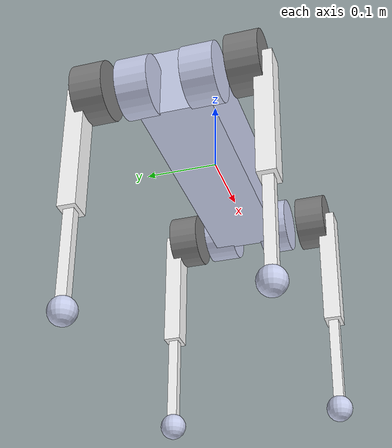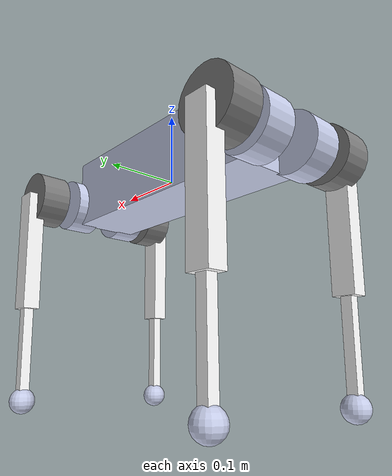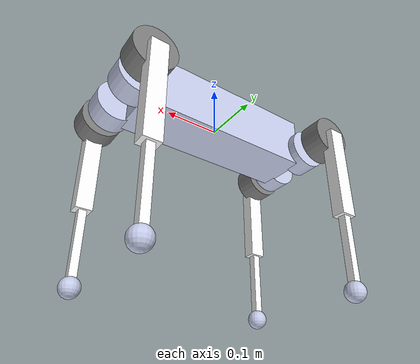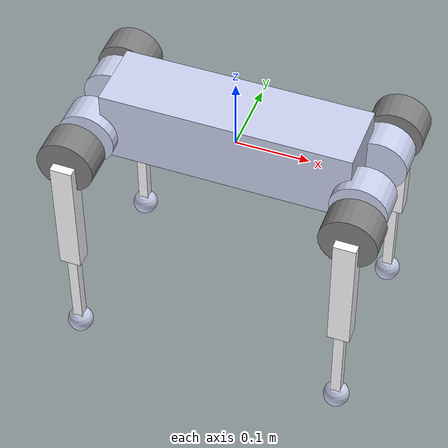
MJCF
<mujoco model="fanfan">
  <compiler angle="radian"/>

  <worldbody>
    <geom size="0.17 0.0475 0.05" pos="0 0 0.017" type="box" rgba="0.792157 0.819608 0.933333 1"/>
    <geom size="0.002 0.002 0.001" type="box" rgba="0.792157 0.819608 0.933333 1"/>
    <body name="FR_hip" pos="0.19 -0.0451 0.00075">
      <inertial pos="-0.00439891 0.00308568 0" quat="0.500068 0.500068 0.499932 0.499932" mass="0.402185" diaginertia="0.000305797 0.000212343 0.000212341"/>
      <joint name="FR_hip_joint" pos="0 0 0" axis="1 0 0" range="-0.8 0.8" actuatorfrcrange="-17 17"/>
      <geom size="0.039 0.021" pos="-0.0044 0.0031 0" quat="0.707107 0.707107 0 0" type="cylinder" rgba="0.792157 0.819608 0.933333 1"/>
      <geom size="0.039 0.021" pos="0 -0.0545 0" quat="0.707107 0.707107 0 0" type="cylinder"/>
      <body name="FR_thigh" pos="0 -0.076 0">
        <inertial pos="0 0 -0.0845" quat="0.707107 0 0 0.707107" mass="0.599413" diaginertia="0.00150657 0.00147161 0.000124878"/>
        <joint name="FR_thigh_joint" pos="0 0 0" axis="0 1 0" range="-0.5 4" actuatorfrcrange="-17 17"/>
        <geom size="0.088 0.012 0.015" pos="0 0 -0.0845" quat="0.707107 0 0.707107 0" type="box" rgba="1 1 1 1"/>
        <body name="FR_calf" pos="0 0.0005 -0.15606">
          <inertial pos="0 -0.000341046 -0.0985067" quat="0.999999 0.00163874 0 0" mass="0.118456" diaginertia="0.000299002 0.000298999 9.24691e-06"/>
          <joint name="FR_calf_joint" pos="0 0 0" axis="0 1 0" range="-2.7 -0.85" actuatorfrcrange="-17 17"/>
          <geom size="0.079 0.007 0.007" pos="0 -0.0005 -0.075" quat="0.707107 0 0.707107 0" type="box" rgba="1 1 1 1"/>
          <geom size="0.018" pos="0 0 -0.148942" rgba="0.792157 0.819608 0.933333 1"/>
        </body>
      </body>
    </body>
    <body name="FL_hip" pos="0.19 0.0451 0.00075">
      <inertial pos="-0.00439891 -0.00308568 0" quat="0.499932 0.499932 0.500068 0.500068" mass="0.402185" diaginertia="0.000305797 0.000212343 0.000212341"/>
      <joint name="FL_hip_joint" pos="0 0 0" axis="1 0 0" range="-0.8 0.8" actuatorfrcrange="-17 17"/>
      <geom size="0.039 0.021" pos="-0.0044 -0.0031 0" quat="0.707107 0.707107 0 0" type="cylinder" rgba="0.792157 0.819608 0.933333 1"/>
      <geom size="0.039 0.021" pos="0 0.0545 0" quat="0.707107 0.707107 0 0" type="cylinder"/>
      <body name="FL_thigh" pos="0 0.076 0">
        <inertial pos="0 0 -0.0845" quat="0.707107 0 0 0.707107" mass="0.599405" diaginertia="0.00150656 0.00147159 0.000124876"/>
        <joint name="FL_thigh_joint" pos="0 0 0" axis="0 1 0" range="-0.5 4" actuatorfrcrange="-17 17"/>
        <geom size="0.088 0.012 0.015" pos="0 0 -0.0845" quat="0.707107 0 0.707107 0" type="box" rgba="1 1 1 1"/>
        <body name="FL_calf" pos="0 -0.0005 -0.15606">
          <inertial pos="0 0.000341046 -0.0985067" quat="0.999999 -0.00163874 0 0" mass="0.118456" diaginertia="0.000299002 0.000298999 9.24691e-06"/>
          <joint name="FL_calf_joint" pos="0 0 0" axis="0 1 0" range="-2.7 -0.85" actuatorfrcrange="-17 17"/>
          <geom size="0.079 0.007 0.007" pos="0 0.0005 -0.075" quat="0.707107 0 0.707107 0" type="box" rgba="1 1 1 1"/>
          <geom size="0.018" pos="0 0 -0.148942" rgba="0.792157 0.819608 0.933333 1"/>
        </body>
      </body>
    </body>
    <body name="RR_hip" pos="-0.19 -0.0451 0.00075">
      <inertial pos="0.00439891 0.00308568 0" quat="0.499932 0.499932 0.500068 0.500068" mass="0.402185" diaginertia="0.000305797 0.000212343 0.000212341"/>
      <joint name="RR_hip_joint" pos="0 0 0" axis="1 0 0" range="-0.8 0.8" actuatorfrcrange="-17 17"/>
      <geom size="0.039 0.021" pos="0.0044 0.0031 0" quat="0.707107 0.707107 0 0" type="cylinder" rgba="0.792157 0.819608 0.933333 1"/>
      <geom size="0.039 0.021" pos="0 -0.0545 0" quat="0.707107 0.707107 0 0" type="cylinder"/>
      <body name="RR_thigh" pos="0 -0.076 0">
        <inertial pos="0 0 -0.0845" quat="0.707107 0 0 0.707107" mass="0.599413" diaginertia="0.00150657 0.00147161 0.000124878"/>
        <joint name="RR_thigh_joint" pos="0 0 0" axis="0 1 0" range="-0.5 4" actuatorfrcrange="-17 17"/>
        <geom size="0.088 0.012 0.015" pos="0 0 -0.0845" quat="0.707107 0 0.707107 0" type="box" rgba="1 1 1 1"/>
        <body name="RR_calf" pos="0 0.0005 -0.15606">
          <inertial pos="0 -0.000341046 -0.0985061" quat="0.999999 0.00163874 0 0" mass="0.118456" diaginertia="0.000298996 0.000298992 9.24691e-06"/>
          <joint name="RR_calf_joint" pos="0 0 0" axis="0 1 0" range="-2.7 -0.85" actuatorfrcrange="-17 17"/>
          <geom size="0.079 0.007 0.007" pos="0 -0.0005 -0.075" quat="0.707107 0 0.707107 0" type="box" rgba="1 1 1 1"/>
          <geom size="0.018" pos="0 0 -0.14894" rgba="0.792157 0.819608 0.933333 1"/>
        </body>
      </body>
    </body>
    <body name="RL_hip" pos="-0.19 0.0451 0.00075">
      <inertial pos="0.00439891 -0.00308568 0" quat="0.500068 0.500068 0.499932 0.499932" mass="0.402185" diaginertia="0.000305797 0.000212343 0.000212341"/>
      <joint name="RL_hip_joint" pos="0 0 0" axis="1 0 0" range="-0.8 0.8" actuatorfrcrange="-17 17"/>
      <geom size="0.039 0.021" pos="0.0044 -0.0031 0" quat="0.707107 0.707107 0 0" type="cylinder" rgba="0.792157 0.819608 0.933333 1"/>
      <geom size="0.039 0.021" pos="0 0.0545 0" quat="0.707107 0.707107 0 0" type="cylinder"/>
      <body name="RL_thigh" pos="0 0.076 0">
        <inertial pos="0 0 -0.0845" quat="0.707107 0 0 0.707107" mass="0.599405" diaginertia="0.00150656 0.00147159 0.000124876"/>
        <joint name="RL_thigh_joint" pos="0 0 0" axis="0 1 0" range="-0.5 4" actuatorfrcrange="-17 17"/>
        <geom size="0.088 0.012 0.015" pos="0 0 -0.0845" quat="0.707107 0 0.707107 0" type="box" rgba="1 1 1 1"/>
        <body name="RL_calf" pos="0 -0.0005 -0.15606">
          <inertial pos="0 0.000341046 -0.0985061" quat="0.999999 -0.00163874 0 0" mass="0.118456" diaginertia="0.000298996 0.000298992 9.24691e-06"/>
          <joint name="RL_calf_joint" pos="0 0 0" axis="0 1 0" range="-2.7 -0.85" actuatorfrcrange="-17 17"/>
          <geom size="0.079 0.007 0.007" pos="0 0.0005 -0.075" quat="0.707107 0 0.707107 0" type="box" rgba="1 1 1 1"/>
          <geom size="0.018" pos="0 0 -0.14894" rgba="0.792157 0.819608 0.933333 1"/>
        </body>
      </body>
    </body>
  </worldbody>
</mujoco>
